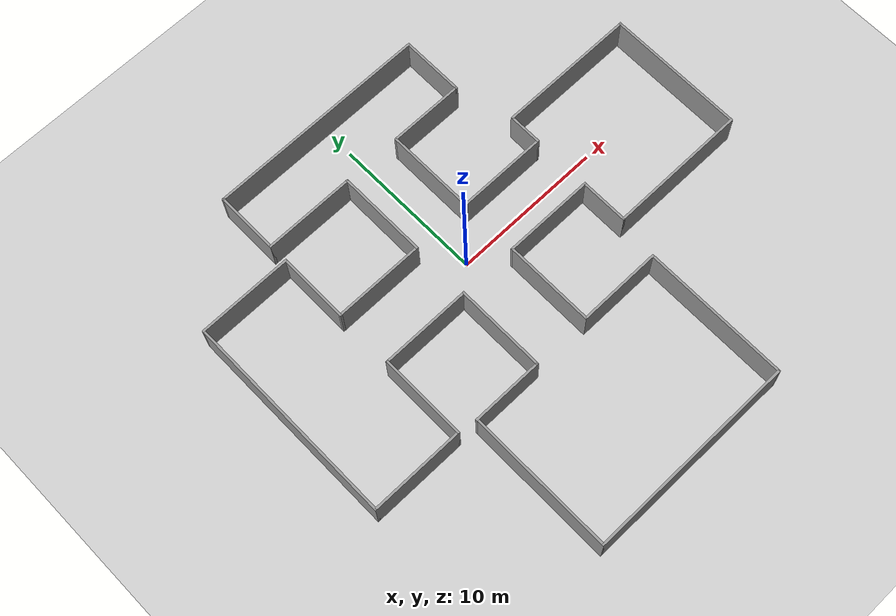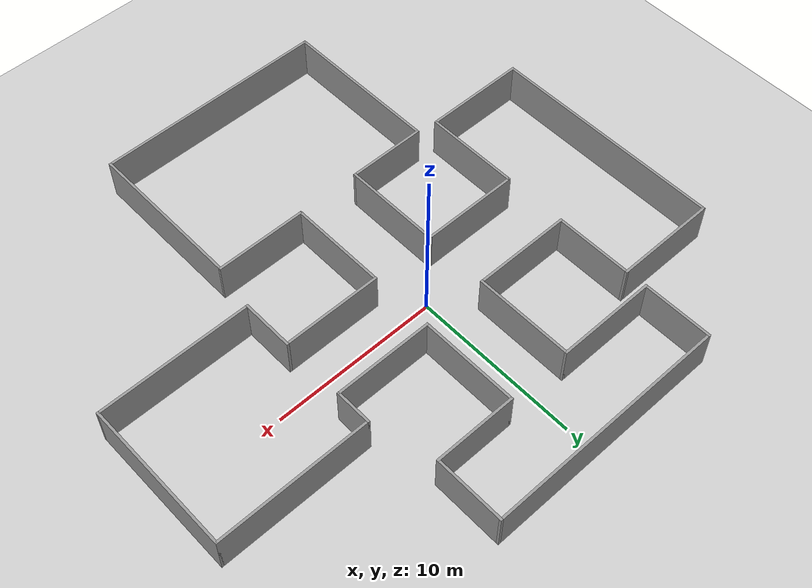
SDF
<sdf version="1.7">
 <world name="lab_world">
  <gravity>0 0 -9.8</gravity>
  <model name="ground_plane">
   <static>1</static>
   <link name="link">
    <collision name="collision">
     <geometry><plane><normal>0 0 1</normal><size>100 100</size></plane></geometry>
     <surface><friction><ode><mu>100</mu><mu2>50</mu2></ode></friction></surface>
    </collision>
    <visual name="visual">
     <cast_shadows>0</cast_shadows>
     <geometry><plane><normal>0 0 1</normal><size>100 100</size></plane></geometry>
     <material>
      <script><uri>file://media/materials/scripts/gazebo.material</uri><name>Gazebo/Grey</name></script>
     </material>
    </visual>
   </link>
  </model>
  <light name="sun" type="directional">
   <pose>0 0 10 0 -0 0</pose>
   <diffuse>0.8 0.8 0.8 1</diffuse>
   <specular>0.2 0.2 0.2 1</specular>
   <attenuation>
    <range>1000</range>
    <constant>0.9</constant>
    <linear>0.01</linear>
    <quadratic>0.001</quadratic>
   </attenuation>
   <direction>-0.5 0.1 -0.9</direction>
   <spot><inner_angle>0</inner_angle><outer_angle>0</outer_angle><falloff>0</falloff></spot>
  </light>
  <magnetic_field>6e-06 2.3e-05 -4.2e-05</magnetic_field>
  <atmosphere type="adiabatic"/>
  <physics type="ode">
   <max_step_size>0.001</max_step_size>
   <real_time_factor>1</real_time_factor>
   <real_time_update_rate>1000</real_time_update_rate>
  </physics>
  <scene><ambient>0.4 0.4 0.4 1</ambient><background>0.7 0.7 0.7 1</background><shadows>1</shadows></scene>
  <spherical_coordinates>
   <surface_model>EARTH_WGS84</surface_model>
   <latitude_deg>0</latitude_deg>
   <longitude_deg>0</longitude_deg>
   <elevation>0</elevation>
   <heading_deg>0</heading_deg>
  </spherical_coordinates>
  <model name="ten_road">
   <pose>1.47132 -2.67983 0 0 -0 0</pose>
   <link name="Wall_14">
    <collision name="Wall_14_Collision">
     <geometry><box><size>6 0.15 2.5</size></box></geometry>
     <pose>0 0 1.25 0 -0 0</pose>
    </collision>
    <visual name="Wall_14_Visual">
     <pose>0 0 1.25 0 -0 0</pose>
     <geometry><box><size>6 0.15 2.5</size></box></geometry>
     <material>
      <script><uri>file://media/materials/scripts/gazebo.material</uri><name>Gazebo/Grey</name></script>
      <ambient>1 1 1 1</ambient>
     </material>
     <meta><layer>0</layer></meta>
    </visual>
    <pose>-6.35 4.675 0 0 -0 3.14159</pose>
   </link>
   <link name="Wall_16">
    <collision name="Wall_16_Collision">
     <geometry><box><size>6 0.15 2.5</size></box></geometry>
     <pose>0 0 1.25 0 -0 0</pose>
    </collision>
    <visual name="Wall_16_Visual">
     <pose>0 0 1.25 0 -0 0</pose>
     <geometry><box><size>6 0.15 2.5</size></box></geometry>
     <material>
      <script><uri>file://media/materials/scripts/gazebo.material</uri><name>Gazebo/Grey</name></script>
      <ambient>1 1 1 1</ambient>
     </material>
     <meta><layer>0</layer></meta>
    </visual>
    <pose>-3.425 7.6 0 0 -0 1.5708</pose>
   </link>
   <link name="Wall_18">
    <collision name="Wall_18_Collision">
     <geometry><box><size>6 0.15 2.5</size></box></geometry>
     <pose>0 0 1.25 0 -0 0</pose>
    </collision>
    <visual name="Wall_18_Visual">
     <pose>0 0 1.25 0 -0 0</pose>
     <geometry><box><size>6 0.15 2.5</size></box></geometry>
     <material>
      <script><uri>file://media/materials/scripts/gazebo.material</uri><name>Gazebo/Grey</name></script>
      <ambient>1 1 1 1</ambient>
     </material>
     <meta><layer>0</layer></meta>
    </visual>
    <pose>0.425 7.6 0 0 -0 -1.5708</pose>
   </link>
   <link name="Wall_19">
    <collision name="Wall_19_Collision">
     <geometry><box><size>6 0.15 2.5</size></box></geometry>
     <pose>0 0 1.25 0 -0 0</pose>
    </collision>
    <visual name="Wall_19_Visual">
     <pose>0 0 1.25 0 -0 0</pose>
     <geometry><box><size>6 0.15 2.5</size></box></geometry>
     <material>
      <script><uri>file://media/materials/scripts/gazebo.material</uri><name>Gazebo/Grey</name></script>
      <ambient>1 1 1 1</ambient>
     </material>
     <meta><layer>0</layer></meta>
    </visual>
    <pose>3.35 4.675 0 0 -0 0</pose>
   </link>
   <link name="Wall_21">
    <collision name="Wall_21_Collision">
     <geometry><box><size>6 0.15 2.5</size></box></geometry>
     <pose>0 0 1.25 0 -0 0</pose>
    </collision>
    <visual name="Wall_21_Visual">
     <pose>0 0 1.25 0 -0 0</pose>
     <geometry><box><size>6 0.15 2.5</size></box></geometry>
     <material>
      <script><uri>file://media/materials/scripts/gazebo.material</uri><name>Gazebo/Grey</name></script>
      <ambient>1 1 1 1</ambient>
     </material>
     <meta><layer>0</layer></meta>
    </visual>
    <pose>3.35 0.825001 0 0 -0 3.14159</pose>
   </link>
   <link name="Wall_22">
    <collision name="Wall_22_Collision">
     <geometry><box><size>6 0.15 2.5</size></box></geometry>
     <pose>0 0 1.25 0 -0 0</pose>
    </collision>
    <visual name="Wall_22_Visual">
     <pose>0 0 1.25 0 -0 0</pose>
     <geometry><box><size>6 0.15 2.5</size></box></geometry>
     <material>
      <script><uri>file://media/materials/scripts/gazebo.material</uri><name>Gazebo/Grey</name></script>
      <ambient>1 1 1 1</ambient>
     </material>
     <meta><layer>0</layer></meta>
    </visual>
    <pose>0.425 -2.1 0 0 -0 -1.5708</pose>
   </link>
   <link name="Wall_24">
    <collision name="Wall_24_Collision">
     <geometry><box><size>3.25 0.15 2.5</size></box></geometry>
     <pose>0 0 1.25 0 -0 0</pose>
    </collision>
    <visual name="Wall_24_Visual">
     <pose>0 0 1.25 0 -0 0</pose>
     <geometry><box><size>3.25 0.15 2.5</size></box></geometry>
     <material>
      <script><uri>file://media/materials/scripts/gazebo.material</uri><name>Gazebo/Grey</name></script>
      <ambient>1 1 1 1</ambient>
     </material>
     <meta><layer>0</layer></meta>
    </visual>
    <pose>6.275 -0.724999 0 0 -0 -1.5708</pose>
   </link>
   <link name="Wall_25">
    <collision name="Wall_25_Collision">
     <geometry><box><size>9.25 0.15 2.5</size></box></geometry>
     <pose>0 0 1.25 0 -0 0</pose>
    </collision>
    <visual name="Wall_25_Visual">
     <pose>0 0 1.25 0 -0 0</pose>
     <geometry><box><size>9.25 0.15 2.5</size></box></geometry>
     <material>
      <script><uri>file://media/materials/scripts/gazebo.material</uri><name>Gazebo/Grey</name></script>
      <ambient>1 1 1 1</ambient>
     </material>
     <meta><layer>0</layer></meta>
    </visual>
    <pose>10.825 -2.275 0 0 -0 0</pose>
   </link>
   <link name="Wall_27">
    <collision name="Wall_27_Collision">
     <geometry><box><size>2.25 0.15 2.5</size></box></geometry>
     <pose>0 0 1.25 0 -0 0</pose>
    </collision>
    <visual name="Wall_27_Visual">
     <pose>0 0 1.25 0 -0 0</pose>
     <geometry><box><size>2.25 0.15 2.5</size></box></geometry>
     <material>
      <script><uri>file://media/materials/scripts/gazebo.material</uri><name>Gazebo/Grey</name></script>
      <ambient>1 1 1 1</ambient>
     </material>
     <meta><layer>0</layer></meta>
    </visual>
    <pose>6.275 5.725 0 0 -0 1.5708</pose>
   </link>
   <link name="Wall_28">
    <collision name="Wall_28_Collision">
     <geometry><box><size>9.25 0.15 2.5</size></box></geometry>
     <pose>0 0 1.25 0 -0 0</pose>
    </collision>
    <visual name="Wall_28_Visual">
     <pose>0 0 1.25 0 -0 0</pose>
     <geometry><box><size>9.25 0.15 2.5</size></box></geometry>
     <material>
      <script><uri>file://media/materials/scripts/gazebo.material</uri><name>Gazebo/Grey</name></script>
      <ambient>1 1 1 1</ambient>
     </material>
     <meta><layer>0</layer></meta>
    </visual>
    <pose>10.825 6.775 0 0 -0 0</pose>
   </link>
   <link name="Wall_29">
    <collision name="Wall_29_Collision">
     <geometry><box><size>9.2 0.15 2.5</size></box></geometry>
     <pose>0 0 1.25 0 -0 0</pose>
    </collision>
    <visual name="Wall_29_Visual">
     <pose>0 0 1.25 0 -0 0</pose>
     <geometry><box><size>9.2 0.15 2.5</size></box></geometry>
     <material>
      <script><uri>file://media/materials/scripts/gazebo.material</uri><name>Gazebo/Grey</name></script>
      <ambient>1 1 1 1</ambient>
     </material>
     <meta><layer>0</layer></meta>
    </visual>
    <pose>15.375 2.25 0 0 -0 -1.5708</pose>
   </link>
   <link name="Wall_31">
    <collision name="Wall_31_Collision">
     <geometry><box><size>5 0.15 2.5</size></box></geometry>
     <pose>0 0 1.25 0 -0 0</pose>
    </collision>
    <visual name="Wall_31_Visual">
     <pose>0 0 1.25 0 -0 0</pose>
     <geometry><box><size>5 0.15 2.5</size></box></geometry>
     <material>
      <script><uri>file://media/materials/scripts/gazebo.material</uri><name>Gazebo/Grey</name></script>
      <ambient>1 1 1 1</ambient>
     </material>
     <meta><layer>0</layer></meta>
    </visual>
    <pose>2.85 10.525 0 0 -0 0</pose>
   </link>
   <link name="Wall_32">
    <collision name="Wall_32_Collision">
     <geometry><box><size>4.25 0.15 2.5</size></box></geometry>
     <pose>0 0 1.25 0 -0 0</pose>
    </collision>
    <visual name="Wall_32_Visual">
     <pose>0 0 1.25 0 -0 0</pose>
     <geometry><box><size>4.25 0.15 2.5</size></box></geometry>
     <material>
      <script><uri>file://media/materials/scripts/gazebo.material</uri><name>Gazebo/Grey</name></script>
      <ambient>1 1 1 1</ambient>
     </material>
     <meta><layer>0</layer></meta>
    </visual>
    <pose>5.275 12.575 0 0 -0 1.5708</pose>
   </link>
   <link name="Wall_33">
    <collision name="Wall_33_Collision">
     <geometry><box><size>14.75 0.15 2.5</size></box></geometry>
     <pose>0 0 1.25 0 -0 0</pose>
    </collision>
    <visual name="Wall_33_Visual">
     <pose>0 0 1.25 0 -0 0</pose>
     <geometry><box><size>14.75 0.15 2.5</size></box></geometry>
     <material>
      <script><uri>file://media/materials/scripts/gazebo.material</uri><name>Gazebo/Grey</name></script>
      <ambient>1 1 1 1</ambient>
     </material>
     <meta><layer>0</layer></meta>
    </visual>
    <pose>-2.025 14.625 0 0 -0 3.14159</pose>
   </link>
   <link name="Wall_34">
    <collision name="Wall_34_Collision">
     <geometry><box><size>4.25 0.15 2.5</size></box></geometry>
     <pose>0 0 1.25 0 -0 0</pose>
    </collision>
    <visual name="Wall_34_Visual">
     <pose>0 0 1.25 0 -0 0</pose>
     <geometry><box><size>4.25 0.15 2.5</size></box></geometry>
     <material>
      <script><uri>file://media/materials/scripts/gazebo.material</uri><name>Gazebo/Grey</name></script>
      <ambient>1 1 1 1</ambient>
     </material>
     <meta><layer>0</layer></meta>
    </visual>
    <pose>-9.325 12.575 0 0 -0 -1.5708</pose>
   </link>
   <link name="Wall_35">
    <collision name="Wall_35_Collision">
     <geometry><box><size>6.05 0.15 2.5</size></box></geometry>
     <pose>0 0 1.25 0 -0 0</pose>
    </collision>
    <visual name="Wall_35_Visual">
     <pose>0 0 1.25 0 -0 0</pose>
     <geometry><box><size>6.05 0.15 2.5</size></box></geometry>
     <material>
      <script><uri>file://media/materials/scripts/gazebo.material</uri><name>Gazebo/Grey</name></script>
      <ambient>1 1 1 1</ambient>
     </material>
     <meta><layer>0</layer></meta>
    </visual>
    <pose>-6.375 10.525 0 0 -0 0</pose>
   </link>
   <link name="Wall_37">
    <collision name="Wall_37_Collision">
     <geometry><box><size>4.75 0.15 2.5</size></box></geometry>
     <pose>0 0 1.25 0 -0 0</pose>
    </collision>
    <visual name="Wall_37_Visual">
     <pose>0 0 1.25 0 -0 0</pose>
     <geometry><box><size>4.75 0.15 2.5</size></box></geometry>
     <material>
      <script><uri>file://media/materials/scripts/gazebo.material</uri><name>Gazebo/Grey</name></script>
      <ambient>1 1 1 1</ambient>
     </material>
     <meta><layer>0</layer></meta>
    </visual>
    <pose>-9.275 6.975 0 0 -0 1.5708</pose>
   </link>
   <link name="Wall_38">
    <collision name="Wall_38_Collision">
     <geometry><box><size>6.25 0.15 2.5</size></box></geometry>
     <pose>0 0 1.25 0 -0 0</pose>
    </collision>
    <visual name="Wall_38_Visual">
     <pose>0 0 1.25 0 -0 0</pose>
     <geometry><box><size>6.25 0.15 2.5</size></box></geometry>
     <material>
      <script><uri>file://media/materials/scripts/gazebo.material</uri><name>Gazebo/Grey</name></script>
      <ambient>1 1 1 1</ambient>
     </material>
     <meta><layer>0</layer></meta>
    </visual>
    <pose>-12.325 9.275 0 0 -0 3.14159</pose>
   </link>
   <link name="Wall_39">
    <collision name="Wall_39_Collision">
     <geometry><box><size>14.25 0.15 2.5</size></box></geometry>
     <pose>0 0 1.25 0 -0 0</pose>
    </collision>
    <visual name="Wall_39_Visual">
     <pose>0 0 1.25 0 -0 0</pose>
     <geometry><box><size>14.25 0.15 2.5</size></box></geometry>
     <material>
      <script><uri>file://media/materials/scripts/gazebo.material</uri><name>Gazebo/Grey</name></script>
      <ambient>1 1 1 1</ambient>
     </material>
     <meta><layer>0</layer></meta>
    </visual>
    <pose>-15.375 2.225 0 0 -0 -1.5708</pose>
   </link>
   <link name="Wall_40">
    <collision name="Wall_40_Collision">
     <geometry><box><size>6.25 0.15 2.5</size></box></geometry>
     <pose>0 0 1.25 0 -0 0</pose>
    </collision>
    <visual name="Wall_40_Visual">
     <pose>0 0 1.25 0 -0 0</pose>
     <geometry><box><size>6.25 0.15 2.5</size></box></geometry>
     <material>
      <script><uri>file://media/materials/scripts/gazebo.material</uri><name>Gazebo/Grey</name></script>
      <ambient>1 1 1 1</ambient>
     </material>
     <meta><layer>0</layer></meta>
    </visual>
    <pose>-12.325 -4.825 0 0 -0 0</pose>
   </link>
   <link name="Wall_41">
    <collision name="Wall_41_Collision">
     <geometry><box><size>5.8 0.15 2.5</size></box></geometry>
     <pose>0 0 1.25 0 -0 0</pose>
    </collision>
    <visual name="Wall_41_Visual">
     <pose>0 0 1.25 0 -0 0</pose>
     <geometry><box><size>5.8 0.15 2.5</size></box></geometry>
     <material>
      <script><uri>file://media/materials/scripts/gazebo.material</uri><name>Gazebo/Grey</name></script>
      <ambient>1 1 1 1</ambient>
     </material>
     <meta><layer>0</layer></meta>
    </visual>
    <pose>-9.275 -2 0 0 -0 1.5708</pose>
   </link>
   <link name="Wall_43">
    <collision name="Wall_43_Collision">
     <geometry><box><size>4.75 0.15 2.5</size></box></geometry>
     <pose>0 0 1.25 0 -0 0</pose>
    </collision>
    <visual name="Wall_43_Visual">
     <pose>0 0 1.25 0 -0 0</pose>
     <geometry><box><size>4.75 0.15 2.5</size></box></geometry>
     <material>
      <script><uri>file://media/materials/scripts/gazebo.material</uri><name>Gazebo/Grey</name></script>
      <ambient>1 1 1 1</ambient>
     </material>
     <meta><layer>0</layer></meta>
    </visual>
    <pose>-5.725 -5.025 0 0 -0 3.14159</pose>
   </link>
   <link name="Wall_44">
    <collision name="Wall_44_Collision">
     <geometry><box><size>9.75 0.15 2.5</size></box></geometry>
     <pose>0 0 1.25 0 -0 0</pose>
    </collision>
    <visual name="Wall_44_Visual">
     <pose>0 0 1.25 0 -0 0</pose>
     <geometry><box><size>9.75 0.15 2.5</size></box></geometry>
     <material>
      <script><uri>file://media/materials/scripts/gazebo.material</uri><name>Gazebo/Grey</name></script>
      <ambient>1 1 1 1</ambient>
     </material>
     <meta><layer>0</layer></meta>
    </visual>
    <pose>-8.025 -9.825 0 0 -0 -1.5708</pose>
   </link>
   <link name="Wall_45">
    <collision name="Wall_45_Collision">
     <geometry><box><size>14 0.15 2.5</size></box></geometry>
     <pose>0 0 1.25 0 -0 0</pose>
    </collision>
    <visual name="Wall_45_Visual">
     <pose>0 0 1.25 0 -0 0</pose>
     <geometry><box><size>14 0.15 2.5</size></box></geometry>
     <material>
      <script><uri>file://media/materials/scripts/gazebo.material</uri><name>Gazebo/Grey</name></script>
      <ambient>1 1 1 1</ambient>
     </material>
     <meta><layer>0</layer></meta>
    </visual>
    <pose>-1.1 -14.625 0 0 -0 0</pose>
   </link>
   <link name="Wall_46">
    <collision name="Wall_46_Collision">
     <geometry><box><size>9.75 0.15 2.5</size></box></geometry>
     <pose>0 0 1.25 0 -0 0</pose>
    </collision>
    <visual name="Wall_46_Visual">
     <pose>0 0 1.25 0 -0 0</pose>
     <geometry><box><size>9.75 0.15 2.5</size></box></geometry>
     <material>
      <script><uri>file://media/materials/scripts/gazebo.material</uri><name>Gazebo/Grey</name></script>
      <ambient>1 1 1 1</ambient>
     </material>
     <meta><layer>0</layer></meta>
    </visual>
    <pose>5.825 -9.825 0 0 -0 1.5708</pose>
   </link>
   <link name="Wall_47">
    <collision name="Wall_47_Collision">
     <geometry><box><size>5.55 0.15 2.5</size></box></geometry>
     <pose>0 0 1.25 0 -0 0</pose>
    </collision>
    <visual name="Wall_47_Visual">
     <pose>0 0 1.25 0 -0 0</pose>
     <geometry><box><size>5.55 0.15 2.5</size></box></geometry>
     <material>
      <script><uri>file://media/materials/scripts/gazebo.material</uri><name>Gazebo/Grey</name></script>
      <ambient>1 1 1 1</ambient>
     </material>
     <meta><layer>0</layer></meta>
    </visual>
    <pose>3.125 -5.025 0 0 -0 -3.14159</pose>
   </link>
   <link name="Wall_7">
    <collision name="Wall_7_Collision">
     <geometry><box><size>6 0.15 2.5</size></box></geometry>
     <pose>0 0 1.25 0 -0 0</pose>
    </collision>
    <visual name="Wall_7_Visual">
     <pose>0 0 1.25 0 -0 0</pose>
     <geometry><box><size>6 0.15 2.5</size></box></geometry>
     <material>
      <script><uri>file://media/materials/scripts/gazebo.material</uri><name>Gazebo/Grey</name></script>
      <ambient>1 1 1 1</ambient>
     </material>
     <meta><layer>0</layer></meta>
    </visual>
    <pose>-3.425 -2.1 0 0 -0 -1.5708</pose>
   </link>
   <link name="Wall_9">
    <collision name="Wall_9_Collision">
     <geometry><box><size>6 0.15 2.5</size></box></geometry>
     <pose>0 0 1.25 0 -0 0</pose>
    </collision>
    <visual name="Wall_9_Visual">
     <pose>0 0 1.25 0 -0 0</pose>
     <geometry><box><size>6 0.15 2.5</size></box></geometry>
     <material>
      <script><uri>file://media/materials/scripts/gazebo.material</uri><name>Gazebo/Grey</name></script>
      <ambient>1 1 1 1</ambient>
     </material>
     <meta><layer>0</layer></meta>
    </visual>
    <pose>-6.35 0.825001 0 0 -0 3.14159</pose>
   </link>
   <static>1</static>
  </model>
 </world>
</sdf>
